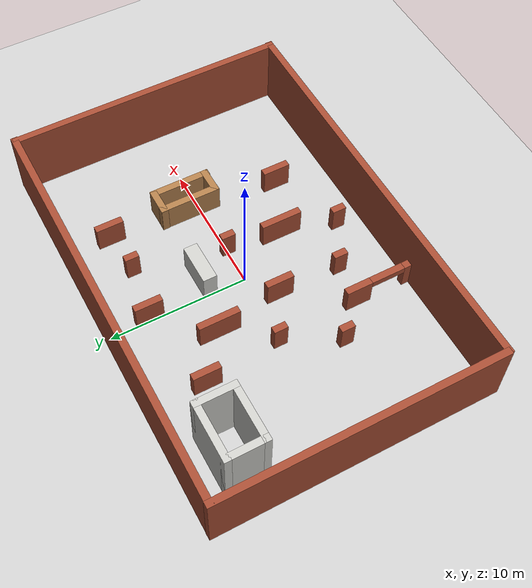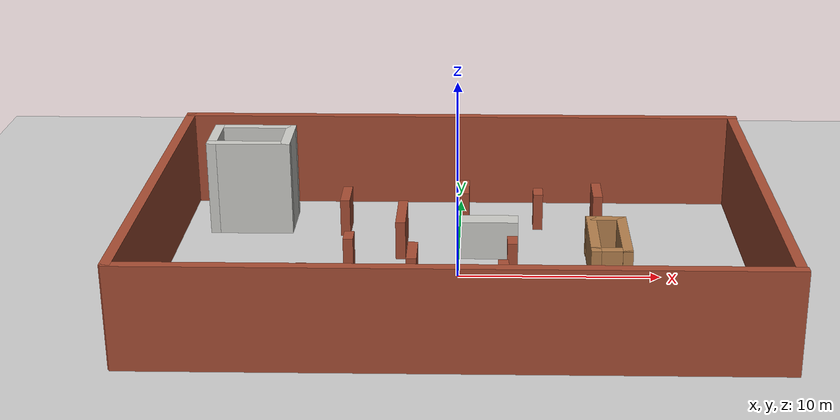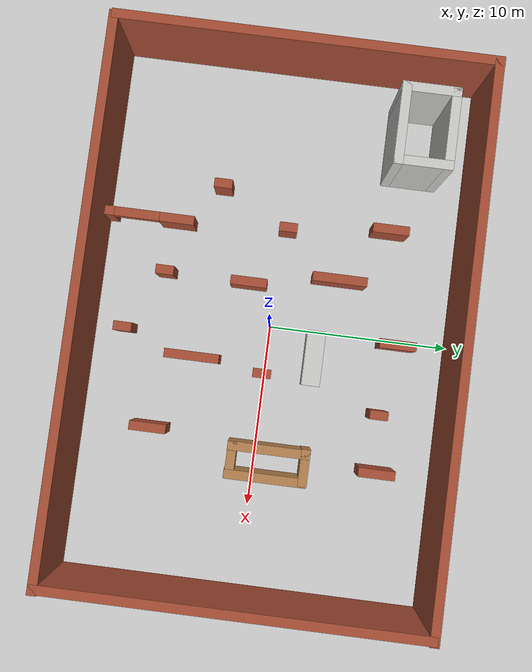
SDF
<sdf version="1.6">
 <world name="default">
  <model name="ground_plane">
   <static>1</static>
   <link name="link">
    <collision name="collision">
     <geometry><plane><normal>0 0 1</normal><size>40 40</size></plane></geometry>
     <surface><friction><ode><mu>100</mu><mu2>50</mu2></ode></friction></surface>
    </collision>
    <visual name="visual">
     <cast_shadows>0</cast_shadows>
     <geometry><plane><normal>0 0 1</normal><size>40 40</size></plane></geometry>
     <material>
      <script><uri>file://media/materials/scripts/gazebo.material</uri><name>Gazebo/Grey</name></script>
     </material>
    </visual>
   </link>
  </model>
  <model name="indoor6">
   <link name="Wall_0">
    <pose>-14.8293 0.123091 0 0 -0 1.5708</pose>
    <visual name="Wall_0_Visual">
     <pose>0 0 2.5 0 -0 0</pose>
     <geometry><box><size>20.5 0.5 5</size></box></geometry>
     <material>
      <script><uri>file://media/materials/scripts/gazebo.material</uri><name>Gazebo/Bricks</name></script>
      <ambient>1 1 1 1</ambient>
      <shader type="pixel"/>
     </material>
     <meta><layer>0</layer></meta>
    </visual>
    <collision name="Wall_0_Collision">
     <pose>0 0 2.5 0 -0 0</pose>
     <geometry><box><size>20.5 0.5 5</size></box></geometry>
     <surface>
      <friction>
       <ode><mu>1</mu><mu2>1</mu2><fdir1>0 0 0</fdir1><slip1>0</slip1><slip2>0</slip2></ode>
       <torsional>
        <coefficient>1</coefficient>
        <patch_radius>0</patch_radius>
        <surface_radius>0</surface_radius>
        <use_patch_radius>1</use_patch_radius>
        <ode><slip>0</slip></ode>
       </torsional>
      </friction>
      <bounce><restitution_coefficient>0</restitution_coefficient><threshold>1e+06</threshold></bounce>
      <contact>
       <collide_without_contact>0</collide_without_contact>
       <collide_without_contact_bitmask>1</collide_without_contact_bitmask>
       <collide_bitmask>1</collide_bitmask>
       <ode>
        <soft_cfm>0</soft_cfm>
        <soft_erp>0.2</soft_erp>
        <kp>1e+13</kp>
        <kd>1</kd>
        <max_vel>0.01</max_vel>
        <min_depth>0</min_depth>
       </ode>
       <bullet>
        <split_impulse>1</split_impulse>
        <split_impulse_penetration_threshold>-0.01</split_impulse_penetration_threshold>
        <soft_cfm>0</soft_cfm>
        <soft_erp>0.2</soft_erp>
        <kp>1e+13</kp>
        <kd>1</kd>
       </bullet>
      </contact>
     </surface>
    </collision>
   </link>
   <link name="Wall_1">
    <pose>-0.001616 10.1104 0 0 -0 0</pose>
    <inertial>
     <mass>1</mass>
     <inertia><ixx>1</ixx><ixy>0</ixy><ixz>0</ixz><iyy>1</iyy><iyz>0</iyz><izz>1</izz></inertia>
    </inertial>
    <visual name="Wall_1_Visual">
     <pose>0 0 2.5 0 -0 0</pose>
     <geometry><box><size>30 0.5 5</size></box></geometry>
     <material>
      <script><uri>file://media/materials/scripts/gazebo.material</uri><name>Gazebo/Bricks</name></script>
      <ambient>1 1 1 1</ambient>
      <shader type="pixel"><normal_map>__default__</normal_map></shader>
      <diffuse>1 1 1 1</diffuse>
      <specular>0.2 0.2 0.2 1</specular>
      <emissive>0 0 0 1</emissive>
     </material>
     <meta><layer>0</layer></meta>
    </visual>
    <collision name="Wall_1_Collision">
     <pose>0 0 2.5 0 -0 0</pose>
     <geometry><box><size>30 0.5 5</size></box></geometry>
     <surface>
      <friction>
       <ode><mu>1</mu><mu2>1</mu2><fdir1>0 0 0</fdir1><slip1>0</slip1><slip2>0</slip2></ode>
       <torsional>
        <coefficient>1</coefficient>
        <patch_radius>0</patch_radius>
        <surface_radius>0</surface_radius>
        <use_patch_radius>1</use_patch_radius>
        <ode><slip>0</slip></ode>
       </torsional>
      </friction>
      <bounce><restitution_coefficient>0</restitution_coefficient><threshold>1e+06</threshold></bounce>
      <contact>
       <collide_without_contact>0</collide_without_contact>
       <collide_without_contact_bitmask>1</collide_without_contact_bitmask>
       <collide_bitmask>1</collide_bitmask>
       <ode>
        <soft_cfm>0</soft_cfm>
        <soft_erp>0.2</soft_erp>
        <kp>1e+13</kp>
        <kd>1</kd>
        <max_vel>0.01</max_vel>
        <min_depth>0</min_depth>
       </ode>
       <bullet>
        <split_impulse>1</split_impulse>
        <split_impulse_penetration_threshold>-0.01</split_impulse_penetration_threshold>
        <soft_cfm>0</soft_cfm>
        <soft_erp>0.2</soft_erp>
        <kp>1e+13</kp>
        <kd>1</kd>
       </bullet>
      </contact>
     </surface>
    </collision>
   </link>
   <link name="Wall_12">
    <pose>-11.01 8.1 0 0 -0 0</pose>
    <visual name="Wall_12_Visual">
     <pose>0 0 2.5 0 -0 0</pose>
     <geometry><box><size>4.35044 0.5 5</size></box></geometry>
     <material>
      <script><uri>file://media/materials/scripts/gazebo.material</uri><name>Gazebo/CeilingTiled</name></script>
      <ambient>1 1 1 1</ambient>
      <shader type="pixel"/>
     </material>
     <meta><layer>0</layer></meta>
    </visual>
    <collision name="Wall_12_Collision">
     <pose>0 0 2.5 0 -0 0</pose>
     <geometry><box><size>4.35044 0.5 5</size></box></geometry>
     <surface>
      <friction>
       <ode><mu>1</mu><mu2>1</mu2><fdir1>0 0 0</fdir1><slip1>0</slip1><slip2>0</slip2></ode>
       <torsional>
        <coefficient>1</coefficient>
        <patch_radius>0</patch_radius>
        <surface_radius>0</surface_radius>
        <use_patch_radius>1</use_patch_radius>
        <ode><slip>0</slip></ode>
       </torsional>
      </friction>
      <bounce><restitution_coefficient>0</restitution_coefficient><threshold>1e+06</threshold></bounce>
      <contact>
       <collide_without_contact>0</collide_without_contact>
       <collide_without_contact_bitmask>1</collide_without_contact_bitmask>
       <collide_bitmask>1</collide_bitmask>
       <ode>
        <soft_cfm>0</soft_cfm>
        <soft_erp>0.2</soft_erp>
        <kp>1e+13</kp>
        <kd>1</kd>
        <max_vel>0.01</max_vel>
        <min_depth>0</min_depth>
       </ode>
       <bullet>
        <split_impulse>1</split_impulse>
        <split_impulse_penetration_threshold>-0.01</split_impulse_penetration_threshold>
        <soft_cfm>0</soft_cfm>
        <soft_erp>0.2</soft_erp>
        <kp>1e+13</kp>
        <kd>1</kd>
       </bullet>
      </contact>
     </surface>
    </collision>
   </link>
   <link name="Wall_13">
    <pose>-9.085 6.8 0 0 0 -1.5708</pose>
    <visual name="Wall_13_Visual">
     <pose>0 0 2.5 0 -0 0</pose>
     <geometry><box><size>3.1 0.5 5</size></box></geometry>
     <material>
      <script><uri>file://media/materials/scripts/gazebo.material</uri><name>Gazebo/CeilingTiled</name></script>
      <ambient>1 1 1 1</ambient>
      <shader type="pixel"/>
     </material>
     <meta><layer>0</layer></meta>
    </visual>
    <collision name="Wall_13_Collision">
     <pose>0 0 2.5 0 -0 0</pose>
     <geometry><box><size>3.1 0.5 5</size></box></geometry>
     <surface>
      <friction>
       <ode><mu>1</mu><mu2>1</mu2><fdir1>0 0 0</fdir1><slip1>0</slip1><slip2>0</slip2></ode>
       <torsional>
        <coefficient>1</coefficient>
        <patch_radius>0</patch_radius>
        <surface_radius>0</surface_radius>
        <use_patch_radius>1</use_patch_radius>
        <ode><slip>0</slip></ode>
       </torsional>
      </friction>
      <bounce><restitution_coefficient>0</restitution_coefficient><threshold>1e+06</threshold></bounce>
      <contact>
       <collide_without_contact>0</collide_without_contact>
       <collide_without_contact_bitmask>1</collide_without_contact_bitmask>
       <collide_bitmask>1</collide_bitmask>
       <ode>
        <soft_cfm>0</soft_cfm>
        <soft_erp>0.2</soft_erp>
        <kp>1e+13</kp>
        <kd>1</kd>
        <max_vel>0.01</max_vel>
        <min_depth>0</min_depth>
       </ode>
       <bullet>
        <split_impulse>1</split_impulse>
        <split_impulse_penetration_threshold>-0.01</split_impulse_penetration_threshold>
        <soft_cfm>0</soft_cfm>
        <soft_erp>0.2</soft_erp>
        <kp>1e+13</kp>
        <kd>1</kd>
       </bullet>
      </contact>
     </surface>
    </collision>
   </link>
   <link name="Wall_14">
    <pose>-11.01 5.5 0 0 -0 3.14159</pose>
    <visual name="Wall_14_Visual">
     <pose>0 0 2.5 0 -0 0</pose>
     <geometry><box><size>4.35 0.5 5</size></box></geometry>
     <material>
      <script><uri>file://media/materials/scripts/gazebo.material</uri><name>Gazebo/CeilingTiled</name></script>
      <ambient>1 1 1 1</ambient>
      <shader type="pixel"/>
     </material>
     <meta><layer>0</layer></meta>
    </visual>
    <collision name="Wall_14_Collision">
     <pose>0 0 2.5 0 -0 0</pose>
     <geometry><box><size>4.35 0.5 5</size></box></geometry>
     <surface>
      <friction>
       <ode><mu>1</mu><mu2>1</mu2><fdir1>0 0 0</fdir1><slip1>0</slip1><slip2>0</slip2></ode>
       <torsional>
        <coefficient>1</coefficient>
        <patch_radius>0</patch_radius>
        <surface_radius>0</surface_radius>
        <use_patch_radius>1</use_patch_radius>
        <ode><slip>0</slip></ode>
       </torsional>
      </friction>
      <bounce><restitution_coefficient>0</restitution_coefficient><threshold>1e+06</threshold></bounce>
      <contact>
       <collide_without_contact>0</collide_without_contact>
       <collide_without_contact_bitmask>1</collide_without_contact_bitmask>
       <collide_bitmask>1</collide_bitmask>
       <ode>
        <soft_cfm>0</soft_cfm>
        <soft_erp>0.2</soft_erp>
        <kp>1e+13</kp>
        <kd>1</kd>
        <max_vel>0.01</max_vel>
        <min_depth>0</min_depth>
       </ode>
       <bullet>
        <split_impulse>1</split_impulse>
        <split_impulse_penetration_threshold>-0.01</split_impulse_penetration_threshold>
        <soft_cfm>0</soft_cfm>
        <soft_erp>0.2</soft_erp>
        <kp>1e+13</kp>
        <kd>1</kd>
       </bullet>
      </contact>
     </surface>
    </collision>
   </link>
   <link name="Wall_15">
    <pose>-12.935 6.8 0 0 -0 1.5708</pose>
    <visual name="Wall_15_Visual">
     <pose>0 0 2.5 0 -0 0</pose>
     <geometry><box><size>3.1 0.5 5</size></box></geometry>
     <material>
      <script><uri>file://media/materials/scripts/gazebo.material</uri><name>Gazebo/CeilingTiled</name></script>
      <ambient>1 1 1 1</ambient>
      <shader type="pixel"/>
     </material>
     <meta><layer>0</layer></meta>
    </visual>
    <collision name="Wall_15_Collision">
     <pose>0 0 2.5 0 -0 0</pose>
     <geometry><box><size>3.1 0.5 5</size></box></geometry>
     <surface>
      <friction>
       <ode><mu>1</mu><mu2>1</mu2><fdir1>0 0 0</fdir1><slip1>0</slip1><slip2>0</slip2></ode>
       <torsional>
        <coefficient>1</coefficient>
        <patch_radius>0</patch_radius>
        <surface_radius>0</surface_radius>
        <use_patch_radius>1</use_patch_radius>
        <ode><slip>0</slip></ode>
       </torsional>
      </friction>
      <bounce><restitution_coefficient>0</restitution_coefficient><threshold>1e+06</threshold></bounce>
      <contact>
       <collide_without_contact>0</collide_without_contact>
       <collide_without_contact_bitmask>1</collide_without_contact_bitmask>
       <collide_bitmask>1</collide_bitmask>
       <ode>
        <soft_cfm>0</soft_cfm>
        <soft_erp>0.2</soft_erp>
        <kp>1e+13</kp>
        <kd>1</kd>
        <max_vel>0.01</max_vel>
        <min_depth>0</min_depth>
       </ode>
       <bullet>
        <split_impulse>1</split_impulse>
        <split_impulse_penetration_threshold>-0.01</split_impulse_penetration_threshold>
        <soft_cfm>0</soft_cfm>
        <soft_erp>0.2</soft_erp>
        <kp>1e+13</kp>
        <kd>1</kd>
       </bullet>
      </contact>
     </surface>
    </collision>
   </link>
   <link name="Wall_17">
    <pose>-5.12466 -7.3138 0 0 -0 1.5708</pose>
    <inertial>
     <mass>1</mass>
     <inertia><ixx>1</ixx><ixy>0</ixy><ixz>0</ixz><iyy>1</iyy><iyz>0</iyz><izz>1</izz></inertia>
    </inertial>
    <visual name="Wall_17_Visual_0">
     <pose>-2.4 0 1 0 -0 0</pose>
     <geometry><box><size>1 0.5 2</size></box></geometry>
     <material>
      <script><uri>file://media/materials/scripts/gazebo.material</uri><name>Gazebo/Bricks</name></script>
      <ambient>1 1 1 1</ambient>
      <shader type="pixel"><normal_map>__default__</normal_map></shader>
      <diffuse>1 1 1 1</diffuse>
      <specular>0.2 0.2 0.2 1</specular>
      <emissive>0 0 0 1</emissive>
     </material>
     <meta><layer>0</layer></meta>
    </visual>
    <visual name="Wall_17_Visual_1">
     <pose>1.54487 0 1 0 -0 0</pose>
     <geometry><box><size>1.91027 0.5 2</size></box></geometry>
     <material>
      <script><uri>file://media/materials/scripts/gazebo.material</uri><name>Gazebo/Bricks</name></script>
      <ambient>1 1 1 1</ambient>
      <shader type="pixel"><normal_map>__default__</normal_map></shader>
      <diffuse>1 1 1 1</diffuse>
      <specular>0.2 0.2 0.2 1</specular>
      <emissive>0 0 0 1</emissive>
     </material>
     <meta><layer>0</layer></meta>
    </visual>
    <visual name="Wall_17_Visual_5">
     <pose>-0.660267 0 1.75 0 -0 0</pose>
     <geometry><box><size>2.5 0.5 0.5</size></box></geometry>
     <material>
      <script><uri>file://media/materials/scripts/gazebo.material</uri><name>Gazebo/Bricks</name></script>
      <ambient>1 1 1 1</ambient>
      <shader type="pixel"><normal_map>__default__</normal_map></shader>
      <diffuse>1 1 1 1</diffuse>
      <specular>0.2 0.2 0.2 1</specular>
      <emissive>0 0 0 1</emissive>
     </material>
     <meta><layer>0</layer></meta>
    </visual>
    <collision name="Wall_17_Collision_1">
     <pose>1.54487 0 1 0 -0 0</pose>
     <geometry><box><size>1.91027 0.5 2</size></box></geometry>
     <surface>
      <friction>
       <ode><mu>1</mu><mu2>1</mu2><fdir1>0 0 0</fdir1><slip1>0</slip1><slip2>0</slip2></ode>
       <torsional>
        <coefficient>1</coefficient>
        <patch_radius>0</patch_radius>
        <surface_radius>0</surface_radius>
        <use_patch_radius>1</use_patch_radius>
        <ode><slip>0</slip></ode>
       </torsional>
      </friction>
      <bounce><restitution_coefficient>0</restitution_coefficient><threshold>1e+06</threshold></bounce>
      <contact>
       <collide_without_contact>0</collide_without_contact>
       <collide_without_contact_bitmask>1</collide_without_contact_bitmask>
       <collide_bitmask>1</collide_bitmask>
       <ode>
        <soft_cfm>0</soft_cfm>
        <soft_erp>0.2</soft_erp>
        <kp>1e+13</kp>
        <kd>1</kd>
        <max_vel>0.01</max_vel>
        <min_depth>0</min_depth>
       </ode>
       <bullet>
        <split_impulse>1</split_impulse>
        <split_impulse_penetration_threshold>-0.01</split_impulse_penetration_threshold>
        <soft_cfm>0</soft_cfm>
        <soft_erp>0.2</soft_erp>
        <kp>1e+13</kp>
        <kd>1</kd>
       </bullet>
      </contact>
     </surface>
    </collision>
    <collision name="Wall_17_Collision_5">
     <pose>-0.660267 0 1.75 0 -0 0</pose>
     <geometry><box><size>2.5 0.5 0.5</size></box></geometry>
     <surface>
      <friction>
       <ode><mu>1</mu><mu2>1</mu2><fdir1>0 0 0</fdir1><slip1>0</slip1><slip2>0</slip2></ode>
       <torsional>
        <coefficient>1</coefficient>
        <patch_radius>0</patch_radius>
        <surface_radius>0</surface_radius>
        <use_patch_radius>1</use_patch_radius>
        <ode><slip>0</slip></ode>
       </torsional>
      </friction>
      <bounce><restitution_coefficient>0</restitution_coefficient><threshold>1e+06</threshold></bounce>
      <contact>
       <collide_without_contact>0</collide_without_contact>
       <collide_without_contact_bitmask>1</collide_without_contact_bitmask>
       <collide_bitmask>1</collide_bitmask>
       <ode>
        <soft_cfm>0</soft_cfm>
        <soft_erp>0.2</soft_erp>
        <kp>1e+13</kp>
        <kd>1</kd>
        <max_vel>0.01</max_vel>
        <min_depth>0</min_depth>
       </ode>
       <bullet>
        <split_impulse>1</split_impulse>
        <split_impulse_penetration_threshold>-0.01</split_impulse_penetration_threshold>
        <soft_cfm>0</soft_cfm>
        <soft_erp>0.2</soft_erp>
        <kp>1e+13</kp>
        <kd>1</kd>
       </bullet>
      </contact>
     </surface>
    </collision>
    <collision name="Wall_17_Collision_0">
     <pose>-2.4 0 1 0 -0 0</pose>
     <geometry><box><size>1 0.5 2</size></box></geometry>
     <surface>
      <friction>
       <ode><mu>1</mu><mu2>1</mu2><fdir1>0 0 0</fdir1><slip1>0</slip1><slip2>0</slip2></ode>
       <torsional>
        <coefficient>1</coefficient>
        <patch_radius>0</patch_radius>
        <surface_radius>0</surface_radius>
        <use_patch_radius>1</use_patch_radius>
        <ode><slip>0</slip></ode>
       </torsional>
      </friction>
      <bounce><restitution_coefficient>0</restitution_coefficient><threshold>1e+06</threshold></bounce>
      <contact>
       <collide_without_contact>0</collide_without_contact>
       <collide_without_contact_bitmask>1</collide_without_contact_bitmask>
       <collide_bitmask>1</collide_bitmask>
       <ode>
        <soft_cfm>0</soft_cfm>
        <soft_erp>0.2</soft_erp>
        <kp>1e+13</kp>
        <kd>1</kd>
        <max_vel>0.01</max_vel>
        <min_depth>0</min_depth>
       </ode>
       <bullet>
        <split_impulse>1</split_impulse>
        <split_impulse_penetration_threshold>-0.01</split_impulse_penetration_threshold>
        <soft_cfm>0</soft_cfm>
        <soft_erp>0.2</soft_erp>
        <kp>1e+13</kp>
        <kd>1</kd>
       </bullet>
      </contact>
     </surface>
    </collision>
   </link>
   <link name="Wall_19">
    <pose>6.71461 0.814272 0 0 0 -1.5708</pose>
    <inertial>
     <mass>1</mass>
     <inertia><ixx>1</ixx><ixy>0</ixy><ixz>0</ixz><iyy>1</iyy><iyz>0</iyz><izz>1</izz></inertia>
    </inertial>
    <visual name="Wall_19_Visual">
     <pose>0 0 1 0 -0 0</pose>
     <geometry><box><size>4.5 0.5 2</size></box></geometry>
     <material>
      <script><uri>file://media/materials/scripts/gazebo.material</uri><name>Gazebo/Wood</name></script>
      <ambient>1 1 1 1</ambient>
      <shader type="pixel"><normal_map>__default__</normal_map></shader>
      <diffuse>1 1 1 1</diffuse>
      <specular>0.2 0.2 0.2 1</specular>
      <emissive>0 0 0 1</emissive>
     </material>
     <meta><layer>0</layer></meta>
    </visual>
    <collision name="Wall_19_Collision">
     <pose>0 0 1 0 -0 0</pose>
     <geometry><box><size>4.5 0.5 2</size></box></geometry>
     <surface>
      <friction>
       <ode><mu>1</mu><mu2>1</mu2><fdir1>0 0 0</fdir1><slip1>0</slip1><slip2>0</slip2></ode>
       <torsional>
        <coefficient>1</coefficient>
        <patch_radius>0</patch_radius>
        <surface_radius>0</surface_radius>
        <use_patch_radius>1</use_patch_radius>
        <ode><slip>0</slip></ode>
       </torsional>
      </friction>
      <bounce><restitution_coefficient>0</restitution_coefficient><threshold>1e+06</threshold></bounce>
      <contact>
       <collide_without_contact>0</collide_without_contact>
       <collide_without_contact_bitmask>1</collide_without_contact_bitmask>
       <collide_bitmask>1</collide_bitmask>
       <ode>
        <soft_cfm>0</soft_cfm>
        <soft_erp>0.2</soft_erp>
        <kp>1e+13</kp>
        <kd>1</kd>
        <max_vel>0.01</max_vel>
        <min_depth>0</min_depth>
       </ode>
       <bullet>
        <split_impulse>1</split_impulse>
        <split_impulse_penetration_threshold>-0.01</split_impulse_penetration_threshold>
        <soft_cfm>0</soft_cfm>
        <soft_erp>0.2</soft_erp>
        <kp>1e+13</kp>
        <kd>1</kd>
       </bullet>
      </contact>
     </surface>
    </collision>
   </link>
   <link name="Wall_2">
    <pose>14.7041 0.008258 0 0 0 -1.5708</pose>
    <visual name="Wall_2_Visual">
     <pose>0 0 2.5 0 -0 0</pose>
     <geometry><box><size>20.5 0.5 5</size></box></geometry>
     <material>
      <script><uri>file://media/materials/scripts/gazebo.material</uri><name>Gazebo/Bricks</name></script>
      <ambient>1 1 1 1</ambient>
      <shader type="pixel"/>
     </material>
     <meta><layer>0</layer></meta>
    </visual>
    <collision name="Wall_2_Collision">
     <pose>0 0 2.5 0 -0 0</pose>
     <geometry><box><size>20.5 0.5 5</size></box></geometry>
     <surface>
      <friction>
       <ode><mu>1</mu><mu2>1</mu2><fdir1>0 0 0</fdir1><slip1>0</slip1><slip2>0</slip2></ode>
       <torsional>
        <coefficient>1</coefficient>
        <patch_radius>0</patch_radius>
        <surface_radius>0</surface_radius>
        <use_patch_radius>1</use_patch_radius>
        <ode><slip>0</slip></ode>
       </torsional>
      </friction>
      <bounce><restitution_coefficient>0</restitution_coefficient><threshold>1e+06</threshold></bounce>
      <contact>
       <collide_without_contact>0</collide_without_contact>
       <collide_without_contact_bitmask>1</collide_without_contact_bitmask>
       <collide_bitmask>1</collide_bitmask>
       <ode>
        <soft_cfm>0</soft_cfm>
        <soft_erp>0.2</soft_erp>
        <kp>1e+13</kp>
        <kd>1</kd>
        <max_vel>0.01</max_vel>
        <min_depth>0</min_depth>
       </ode>
       <bullet>
        <split_impulse>1</split_impulse>
        <split_impulse_penetration_threshold>-0.01</split_impulse_penetration_threshold>
        <soft_cfm>0</soft_cfm>
        <soft_erp>0.2</soft_erp>
        <kp>1e+13</kp>
        <kd>1</kd>
       </bullet>
      </contact>
     </surface>
    </collision>
   </link>
   <link name="Wall_20">
    <pose>7.49531 -1.17619 0 0 -0 0</pose>
    <inertial>
     <mass>1</mass>
     <inertia><ixx>1</ixx><ixy>0</ixy><ixz>0</ixz><iyy>1</iyy><iyz>0</iyz><izz>1</izz></inertia>
    </inertial>
    <visual name="Wall_20_Visual">
     <pose>0 0 1 0 -0 0</pose>
     <geometry><box><size>2 0.5 2</size></box></geometry>
     <material>
      <script><uri>file://media/materials/scripts/gazebo.material</uri><name>Gazebo/Wood</name></script>
      <ambient>1 1 1 1</ambient>
      <shader type="pixel"><normal_map>__default__</normal_map></shader>
      <diffuse>1 1 1 1</diffuse>
      <specular>0.2 0.2 0.2 1</specular>
      <emissive>0 0 0 1</emissive>
     </material>
     <meta><layer>0</layer></meta>
    </visual>
    <collision name="Wall_20_Collision">
     <pose>0 0 1 0 -0 0</pose>
     <geometry><box><size>2 0.5 2</size></box></geometry>
     <surface>
      <friction>
       <ode><mu>1</mu><mu2>1</mu2><fdir1>0 0 0</fdir1><slip1>0</slip1><slip2>0</slip2></ode>
       <torsional>
        <coefficient>1</coefficient>
        <patch_radius>0</patch_radius>
        <surface_radius>0</surface_radius>
        <use_patch_radius>1</use_patch_radius>
        <ode><slip>0</slip></ode>
       </torsional>
      </friction>
      <bounce><restitution_coefficient>0</restitution_coefficient><threshold>1e+06</threshold></bounce>
      <contact>
       <collide_without_contact>0</collide_without_contact>
       <collide_without_contact_bitmask>1</collide_without_contact_bitmask>
       <collide_bitmask>1</collide_bitmask>
       <ode>
        <soft_cfm>0</soft_cfm>
        <soft_erp>0.2</soft_erp>
        <kp>1e+13</kp>
        <kd>1</kd>
        <max_vel>0.01</max_vel>
        <min_depth>0</min_depth>
       </ode>
       <bullet>
        <split_impulse>1</split_impulse>
        <split_impulse_penetration_threshold>-0.01</split_impulse_penetration_threshold>
        <soft_cfm>0</soft_cfm>
        <soft_erp>0.2</soft_erp>
        <kp>1e+13</kp>
        <kd>1</kd>
       </bullet>
      </contact>
     </surface>
    </collision>
   </link>
   <link name="Wall_21">
    <pose>8.24649 0.78306 0 0 -0 1.5708</pose>
    <inertial>
     <mass>1</mass>
     <inertia><ixx>1</ixx><ixy>0</ixy><ixz>0</ixz><iyy>1</iyy><iyz>0</iyz><izz>1</izz></inertia>
    </inertial>
    <visual name="Wall_21_Visual">
     <pose>0 0 1 0 -0 0</pose>
     <geometry><box><size>4.5 0.5 2</size></box></geometry>
     <material>
      <script><uri>file://media/materials/scripts/gazebo.material</uri><name>Gazebo/Wood</name></script>
      <ambient>1 1 1 1</ambient>
      <shader type="pixel"><normal_map>__default__</normal_map></shader>
      <diffuse>1 1 1 1</diffuse>
      <specular>0.2 0.2 0.2 1</specular>
      <emissive>0 0 0 1</emissive>
     </material>
     <meta><layer>0</layer></meta>
    </visual>
    <collision name="Wall_21_Collision">
     <pose>0 0 1 0 -0 0</pose>
     <geometry><box><size>4.5 0.5 2</size></box></geometry>
     <surface>
      <friction>
       <ode><mu>1</mu><mu2>1</mu2><fdir1>0 0 0</fdir1><slip1>0</slip1><slip2>0</slip2></ode>
       <torsional>
        <coefficient>1</coefficient>
        <patch_radius>0</patch_radius>
        <surface_radius>0</surface_radius>
        <use_patch_radius>1</use_patch_radius>
        <ode><slip>0</slip></ode>
       </torsional>
      </friction>
      <bounce><restitution_coefficient>0</restitution_coefficient><threshold>1e+06</threshold></bounce>
      <contact>
       <collide_without_contact>0</collide_without_contact>
       <collide_without_contact_bitmask>1</collide_without_contact_bitmask>
       <collide_bitmask>1</collide_bitmask>
       <ode>
        <soft_cfm>0</soft_cfm>
        <soft_erp>0.2</soft_erp>
        <kp>1e+13</kp>
        <kd>1</kd>
        <max_vel>0.01</max_vel>
        <min_depth>0</min_depth>
       </ode>
       <bullet>
        <split_impulse>1</split_impulse>
        <split_impulse_penetration_threshold>-0.01</split_impulse_penetration_threshold>
        <soft_cfm>0</soft_cfm>
        <soft_erp>0.2</soft_erp>
        <kp>1e+13</kp>
        <kd>1</kd>
       </bullet>
      </contact>
     </surface>
    </collision>
   </link>
   <link name="Wall_24">
    <pose>7.43228 2.80863 0 0 -0 0</pose>
    <inertial>
     <mass>1</mass>
     <inertia><ixx>1</ixx><ixy>0</ixy><ixz>0</ixz><iyy>1</iyy><iyz>0</iyz><izz>1</izz></inertia>
    </inertial>
    <visual name="Wall_24_Visual">
     <pose>0 0 1 0 -0 0</pose>
     <geometry><box><size>2 0.5 2</size></box></geometry>
     <material>
      <script><uri>file://media/materials/scripts/gazebo.material</uri><name>Gazebo/Wood</name></script>
      <ambient>1 1 1 1</ambient>
      <shader type="pixel"><normal_map>__default__</normal_map></shader>
      <diffuse>1 1 1 1</diffuse>
      <specular>0.2 0.2 0.2 1</specular>
      <emissive>0 0 0 1</emissive>
     </material>
     <meta><layer>0</layer></meta>
    </visual>
    <collision name="Wall_24_Collision">
     <pose>0 0 1 0 -0 0</pose>
     <geometry><box><size>2 0.5 2</size></box></geometry>
     <surface>
      <friction>
       <ode><mu>1</mu><mu2>1</mu2><fdir1>0 0 0</fdir1><slip1>0</slip1><slip2>0</slip2></ode>
       <torsional>
        <coefficient>1</coefficient>
        <patch_radius>0</patch_radius>
        <surface_radius>0</surface_radius>
        <use_patch_radius>1</use_patch_radius>
        <ode><slip>0</slip></ode>
       </torsional>
      </friction>
      <bounce><restitution_coefficient>0</restitution_coefficient><threshold>1e+06</threshold></bounce>
      <contact>
       <collide_without_contact>0</collide_without_contact>
       <collide_without_contact_bitmask>1</collide_without_contact_bitmask>
       <collide_bitmask>1</collide_bitmask>
       <ode>
        <soft_cfm>0</soft_cfm>
        <soft_erp>0.2</soft_erp>
        <kp>1e+13</kp>
        <kd>1</kd>
        <max_vel>0.01</max_vel>
        <min_depth>0</min_depth>
       </ode>
       <bullet>
        <split_impulse>1</split_impulse>
        <split_impulse_penetration_threshold>-0.01</split_impulse_penetration_threshold>
        <soft_cfm>0</soft_cfm>
        <soft_erp>0.2</soft_erp>
        <kp>1e+13</kp>
        <kd>1</kd>
       </bullet>
      </contact>
     </surface>
    </collision>
   </link>
   <link name="Wall_26">
    <pose>1.50196 2.59156 0 0 0 -1.5708</pose>
    <inertial>
     <mass>1</mass>
     <inertia><ixx>1</ixx><ixy>0</ixy><ixz>0</ixz><iyy>1</iyy><iyz>0</iyz><izz>1</izz></inertia>
    </inertial>
    <visual name="Wall_26_Visual">
     <pose>0 0 1 0 -0 0</pose>
     <geometry><box><size>1 3 2</size></box></geometry>
     <material>
      <script><uri>file://media/materials/scripts/gazebo.material</uri><name>Gazebo/CeilingTiled</name></script>
      <ambient>1 1 1 1</ambient>
      <shader type="pixel"><normal_map>__default__</normal_map></shader>
      <diffuse>1 1 1 1</diffuse>
      <specular>0 0 0 1</specular>
      <emissive>0 0 0 1</emissive>
     </material>
     <meta><layer>0</layer></meta>
    </visual>
    <collision name="Wall_26_Collision">
     <pose>0 0 1 0 -0 0</pose>
     <geometry><box><size>1 3 2</size></box></geometry>
     <surface>
      <friction>
       <ode><mu>1</mu><mu2>1</mu2><fdir1>0 0 0</fdir1><slip1>0</slip1><slip2>0</slip2></ode>
       <torsional>
        <coefficient>1</coefficient>
        <patch_radius>0</patch_radius>
        <surface_radius>0</surface_radius>
        <use_patch_radius>1</use_patch_radius>
        <ode><slip>0</slip></ode>
       </torsional>
      </friction>
      <bounce><restitution_coefficient>0</restitution_coefficient><threshold>1e+06</threshold></bounce>
      <contact>
       <collide_without_contact>0</collide_without_contact>
       <collide_without_contact_bitmask>1</collide_without_contact_bitmask>
       <collide_bitmask>1</collide_bitmask>
       <ode>
        <soft_cfm>0</soft_cfm>
        <soft_erp>0.2</soft_erp>
        <kp>1e+13</kp>
        <kd>1</kd>
        <max_vel>0.01</max_vel>
        <min_depth>0</min_depth>
       </ode>
       <bullet>
        <split_impulse>1</split_impulse>
        <split_impulse_penetration_threshold>-0.01</split_impulse_penetration_threshold>
        <soft_cfm>0</soft_cfm>
        <soft_erp>0.2</soft_erp>
        <kp>1e+13</kp>
        <kd>1</kd>
       </bullet>
      </contact>
     </surface>
    </collision>
   </link>
   <link name="Wall_3">
    <pose>0 -10 0 0 -0 3.14159</pose>
    <inertial>
     <mass>1</mass>
     <inertia><ixx>1</ixx><ixy>0</ixy><ixz>0</ixz><iyy>1</iyy><iyz>0</iyz><izz>1</izz></inertia>
    </inertial>
    <visual name="Wall_3_Visual">
     <pose>0 0 2.5 0 -0 0</pose>
     <geometry><box><size>30 0.5 5</size></box></geometry>
     <material>
      <script><uri>file://media/materials/scripts/gazebo.material</uri><name>Gazebo/Bricks</name></script>
      <ambient>1 1 1 1</ambient>
      <shader type="pixel"><normal_map>__default__</normal_map></shader>
      <diffuse>1 1 1 1</diffuse>
      <specular>0.2 0.2 0.2 1</specular>
      <emissive>0 0 0 1</emissive>
     </material>
     <meta><layer>0</layer></meta>
    </visual>
    <collision name="Wall_3_Collision">
     <pose>0 0 2.5 0 -0 0</pose>
     <geometry><box><size>30 0.5 5</size></box></geometry>
     <surface>
      <friction>
       <ode><mu>1</mu><mu2>1</mu2><fdir1>0 0 0</fdir1><slip1>0</slip1><slip2>0</slip2></ode>
       <torsional>
        <coefficient>1</coefficient>
        <patch_radius>0</patch_radius>
        <surface_radius>0</surface_radius>
        <use_patch_radius>1</use_patch_radius>
        <ode><slip>0</slip></ode>
       </torsional>
      </friction>
      <bounce><restitution_coefficient>0</restitution_coefficient><threshold>1e+06</threshold></bounce>
      <contact>
       <collide_without_contact>0</collide_without_contact>
       <collide_without_contact_bitmask>1</collide_without_contact_bitmask>
       <collide_bitmask>1</collide_bitmask>
       <ode>
        <soft_cfm>0</soft_cfm>
        <soft_erp>0.2</soft_erp>
        <kp>1e+13</kp>
        <kd>1</kd>
        <max_vel>0.01</max_vel>
        <min_depth>0</min_depth>
       </ode>
       <bullet>
        <split_impulse>1</split_impulse>
        <split_impulse_penetration_threshold>-0.01</split_impulse_penetration_threshold>
        <soft_cfm>0</soft_cfm>
        <soft_erp>0.2</soft_erp>
        <kp>1e+13</kp>
        <kd>1</kd>
       </bullet>
      </contact>
     </surface>
    </collision>
   </link>
   <link name="Wall_7_clone_0">
    <pose>-2.1998 -1.42248 0 0 -0 1.5708</pose>
    <inertial>
     <mass>1</mass>
     <inertia><ixx>1</ixx><ixy>0</ixy><ixz>0</ixz><iyy>1</iyy><iyz>0</iyz><izz>1</izz></inertia>
    </inertial>
    <visual name="Wall_7_Visual">
     <pose>0 0 1 0 -0 0</pose>
     <geometry><box><size>2 0.5 2</size></box></geometry>
     <material>
      <script><uri>file://media/materials/scripts/gazebo.material</uri><name>Gazebo/Bricks</name></script>
      <ambient>1 1 1 1</ambient>
      <shader type="pixel"><normal_map>__default__</normal_map></shader>
      <diffuse>1 1 1 1</diffuse>
      <specular>0.2 0.2 0.2 1</specular>
      <emissive>0 0 0 1</emissive>
     </material>
     <meta><layer>0</layer></meta>
    </visual>
    <collision name="Wall_7_Collision">
     <pose>0 0 1 0 -0 0</pose>
     <geometry><box><size>2 0.5 2</size></box></geometry>
     <surface>
      <friction>
       <ode><mu>1</mu><mu2>1</mu2><fdir1>0 0 0</fdir1><slip1>0</slip1><slip2>0</slip2></ode>
       <torsional>
        <coefficient>1</coefficient>
        <patch_radius>0</patch_radius>
        <surface_radius>0</surface_radius>
        <use_patch_radius>1</use_patch_radius>
        <ode><slip>0</slip></ode>
       </torsional>
      </friction>
      <bounce><restitution_coefficient>0</restitution_coefficient><threshold>1e+06</threshold></bounce>
      <contact>
       <collide_without_contact>0</collide_without_contact>
       <collide_without_contact_bitmask>1</collide_without_contact_bitmask>
       <collide_bitmask>1</collide_bitmask>
       <ode>
        <soft_cfm>0</soft_cfm>
        <soft_erp>0.2</soft_erp>
        <kp>1e+13</kp>
        <kd>1</kd>
        <max_vel>0.01</max_vel>
        <min_depth>0</min_depth>
       </ode>
       <bullet>
        <split_impulse>1</split_impulse>
        <split_impulse_penetration_threshold>-0.01</split_impulse_penetration_threshold>
        <soft_cfm>0</soft_cfm>
        <soft_erp>0.2</soft_erp>
        <kp>1e+13</kp>
        <kd>1</kd>
       </bullet>
      </contact>
     </surface>
    </collision>
   </link>
   <link name="Wall_7_clone_0_clone">
    <pose>0.220462 7.05875 0 0 -0 1.5708</pose>
    <inertial>
     <mass>1</mass>
     <inertia><ixx>1</ixx><ixy>0</ixy><ixz>0</ixz><iyy>1</iyy><iyz>0</iyz><izz>1</izz></inertia>
    </inertial>
    <visual name="Wall_7_Visual">
     <pose>0 0 1 0 -0 0</pose>
     <geometry><box><size>2 0.5 2</size></box></geometry>
     <material>
      <script><uri>file://media/materials/scripts/gazebo.material</uri><name>Gazebo/Bricks</name></script>
      <ambient>1 1 1 1</ambient>
      <shader type="pixel"><normal_map>__default__</normal_map></shader>
      <diffuse>1 1 1 1</diffuse>
      <specular>0.2 0.2 0.2 1</specular>
      <emissive>0 0 0 1</emissive>
     </material>
     <meta><layer>0</layer></meta>
    </visual>
    <collision name="Wall_7_Collision">
     <pose>0 0 1 0 -0 0</pose>
     <geometry><box><size>2 0.5 2</size></box></geometry>
     <surface>
      <friction>
       <ode><mu>1</mu><mu2>1</mu2><fdir1>0 0 0</fdir1><slip1>0</slip1><slip2>0</slip2></ode>
       <torsional>
        <coefficient>1</coefficient>
        <patch_radius>0</patch_radius>
        <surface_radius>0</surface_radius>
        <use_patch_radius>1</use_patch_radius>
        <ode><slip>0</slip></ode>
       </torsional>
      </friction>
      <bounce><restitution_coefficient>0</restitution_coefficient><threshold>1e+06</threshold></bounce>
      <contact>
       <collide_without_contact>0</collide_without_contact>
       <collide_without_contact_bitmask>1</collide_without_contact_bitmask>
       <collide_bitmask>1</collide_bitmask>
       <ode>
        <soft_cfm>0</soft_cfm>
        <soft_erp>0.2</soft_erp>
        <kp>1e+13</kp>
        <kd>1</kd>
        <max_vel>0.01</max_vel>
        <min_depth>0</min_depth>
       </ode>
       <bullet>
        <split_impulse>1</split_impulse>
        <split_impulse_penetration_threshold>-0.01</split_impulse_penetration_threshold>
        <soft_cfm>0</soft_cfm>
        <soft_erp>0.2</soft_erp>
        <kp>1e+13</kp>
        <kd>1</kd>
       </bullet>
      </contact>
     </surface>
    </collision>
   </link>
   <link name="Wall_7_clone_0_clone_0_clone">
    <pose>6.31194 -5.84361 0.011132 0 -0 1.5708</pose>
    <inertial>
     <mass>1</mass>
     <inertia><ixx>1</ixx><ixy>0</ixy><ixz>0</ixz><iyy>1</iyy><iyz>0</iyz><izz>1</izz></inertia>
    </inertial>
    <visual name="Wall_7_Visual">
     <pose>0 0 1 0 -0 0</pose>
     <geometry><box><size>2 0.5 2</size></box></geometry>
     <material>
      <script><uri>file://media/materials/scripts/gazebo.material</uri><name>Gazebo/Bricks</name></script>
      <ambient>1 1 1 1</ambient>
      <shader type="pixel"><normal_map>__default__</normal_map></shader>
      <diffuse>1 1 1 1</diffuse>
      <specular>0.2 0.2 0.2 1</specular>
      <emissive>0 0 0 1</emissive>
     </material>
     <meta><layer>0</layer></meta>
    </visual>
    <collision name="Wall_7_Collision">
     <pose>0 0 1 0 -0 0</pose>
     <geometry><box><size>2 0.5 2</size></box></geometry>
     <surface>
      <friction>
       <ode><mu>1</mu><mu2>1</mu2><fdir1>0 0 0</fdir1><slip1>0</slip1><slip2>0</slip2></ode>
       <torsional>
        <coefficient>1</coefficient>
        <patch_radius>0</patch_radius>
        <surface_radius>0</surface_radius>
        <use_patch_radius>1</use_patch_radius>
        <ode><slip>0</slip></ode>
       </torsional>
      </friction>
      <bounce><restitution_coefficient>0</restitution_coefficient><threshold>1e+06</threshold></bounce>
      <contact>
       <collide_without_contact>0</collide_without_contact>
       <collide_without_contact_bitmask>1</collide_without_contact_bitmask>
       <collide_bitmask>1</collide_bitmask>
       <ode>
        <soft_cfm>0</soft_cfm>
        <soft_erp>0.2</soft_erp>
        <kp>1e+13</kp>
        <kd>1</kd>
        <max_vel>0.01</max_vel>
        <min_depth>0</min_depth>
       </ode>
       <bullet>
        <split_impulse>1</split_impulse>
        <split_impulse_penetration_threshold>-0.01</split_impulse_penetration_threshold>
        <soft_cfm>0</soft_cfm>
        <soft_erp>0.2</soft_erp>
        <kp>1e+13</kp>
        <kd>1</kd>
       </bullet>
      </contact>
     </surface>
    </collision>
   </link>
   <link name="Wall_7_clone_0_clone_0_clone_clone">
    <pose>7.25236 6.71504 0.011132 0 -0 1.5708</pose>
    <inertial>
     <mass>1</mass>
     <inertia><ixx>1</ixx><ixy>0</ixy><ixz>0</ixz><iyy>1</iyy><iyz>0</iyz><izz>1</izz></inertia>
    </inertial>
    <visual name="Wall_7_Visual">
     <pose>0 0 1 0 -0 0</pose>
     <geometry><box><size>2 0.5 2</size></box></geometry>
     <material>
      <script><uri>file://media/materials/scripts/gazebo.material</uri><name>Gazebo/Bricks</name></script>
      <ambient>1 1 1 1</ambient>
      <shader type="pixel"><normal_map>__default__</normal_map></shader>
      <diffuse>1 1 1 1</diffuse>
      <specular>0.2 0.2 0.2 1</specular>
      <emissive>0 0 0 1</emissive>
     </material>
     <meta><layer>0</layer></meta>
    </visual>
    <collision name="Wall_7_Collision">
     <pose>0 0 1 0 -0 0</pose>
     <geometry><box><size>2 0.5 2</size></box></geometry>
     <surface>
      <friction>
       <ode><mu>1</mu><mu2>1</mu2><fdir1>0 0 0</fdir1><slip1>0</slip1><slip2>0</slip2></ode>
       <torsional>
        <coefficient>1</coefficient>
        <patch_radius>0</patch_radius>
        <surface_radius>0</surface_radius>
        <use_patch_radius>1</use_patch_radius>
        <ode><slip>0</slip></ode>
       </torsional>
      </friction>
      <bounce><restitution_coefficient>0</restitution_coefficient><threshold>1e+06</threshold></bounce>
      <contact>
       <collide_without_contact>0</collide_without_contact>
       <collide_without_contact_bitmask>1</collide_without_contact_bitmask>
       <collide_bitmask>1</collide_bitmask>
       <ode>
        <soft_cfm>0</soft_cfm>
        <soft_erp>0.2</soft_erp>
        <kp>1e+13</kp>
        <kd>1</kd>
        <max_vel>0.01</max_vel>
        <min_depth>0</min_depth>
       </ode>
       <bullet>
        <split_impulse>1</split_impulse>
        <split_impulse_penetration_threshold>-0.01</split_impulse_penetration_threshold>
        <soft_cfm>0</soft_cfm>
        <soft_erp>0.2</soft_erp>
        <kp>1e+13</kp>
        <kd>1</kd>
       </bullet>
      </contact>
     </surface>
    </collision>
   </link>
   <link name="Wall_7_clone_0_clone_0_clone_clone_0">
    <pose>-6.01704 5.95102 0.011132 0 -0 1.5708</pose>
    <inertial>
     <mass>1</mass>
     <inertia><ixx>1</ixx><ixy>0</ixy><ixz>0</ixz><iyy>1</iyy><iyz>0</iyz><izz>1</izz></inertia>
    </inertial>
    <visual name="Wall_7_Visual">
     <pose>0 0 1 0 -0 0</pose>
     <geometry><box><size>2 0.5 2</size></box></geometry>
     <material>
      <script><uri>file://media/materials/scripts/gazebo.material</uri><name>Gazebo/Bricks</name></script>
      <ambient>1 1 1 1</ambient>
      <shader type="pixel"><normal_map>__default__</normal_map></shader>
      <diffuse>1 1 1 1</diffuse>
      <specular>0.2 0.2 0.2 1</specular>
      <emissive>0 0 0 1</emissive>
     </material>
     <meta><layer>0</layer></meta>
    </visual>
    <collision name="Wall_7_Collision">
     <pose>0 0 1 0 -0 0</pose>
     <geometry><box><size>2 0.5 2</size></box></geometry>
     <surface>
      <friction>
       <ode><mu>1</mu><mu2>1</mu2><fdir1>0 0 0</fdir1><slip1>0</slip1><slip2>0</slip2></ode>
       <torsional>
        <coefficient>1</coefficient>
        <patch_radius>0</patch_radius>
        <surface_radius>0</surface_radius>
        <use_patch_radius>1</use_patch_radius>
        <ode><slip>0</slip></ode>
       </torsional>
      </friction>
      <bounce><restitution_coefficient>0</restitution_coefficient><threshold>1e+06</threshold></bounce>
      <contact>
       <collide_without_contact>0</collide_without_contact>
       <collide_without_contact_bitmask>1</collide_without_contact_bitmask>
       <collide_bitmask>1</collide_bitmask>
       <ode>
        <soft_cfm>0</soft_cfm>
        <soft_erp>0.2</soft_erp>
        <kp>1e+13</kp>
        <kd>1</kd>
        <max_vel>0.01</max_vel>
        <min_depth>0</min_depth>
       </ode>
       <bullet>
        <split_impulse>1</split_impulse>
        <split_impulse_penetration_threshold>-0.01</split_impulse_penetration_threshold>
        <soft_cfm>0</soft_cfm>
        <soft_erp>0.2</soft_erp>
        <kp>1e+13</kp>
        <kd>1</kd>
       </bullet>
      </contact>
     </surface>
    </collision>
   </link>
   <link name="Wall_9_clone">
    <pose>-2.95726 3.49654 0 0 -0 1.5708</pose>
    <inertial>
     <mass>1</mass>
     <inertia><ixx>1</ixx><ixy>0</ixy><ixz>0</ixz><iyy>1</iyy><iyz>0</iyz><izz>1</izz></inertia>
    </inertial>
    <visual name="Wall_9_Visual">
     <pose>0 0 1 0 -0 0</pose>
     <geometry><box><size>3 0.5 2</size></box></geometry>
     <material>
      <script><uri>file://media/materials/scripts/gazebo.material</uri><name>Gazebo/Bricks</name></script>
      <ambient>1 1 1 1</ambient>
      <shader type="pixel"><normal_map>__default__</normal_map></shader>
      <diffuse>1 1 1 1</diffuse>
      <specular>0.2 0.2 0.2 1</specular>
      <emissive>0 0 0 1</emissive>
     </material>
     <meta><layer>0</layer></meta>
    </visual>
    <collision name="Wall_9_Collision">
     <pose>0 0 1 0 -0 0</pose>
     <geometry><box><size>3 0.5 2</size></box></geometry>
     <surface>
      <friction>
       <ode><mu>1</mu><mu2>1</mu2><fdir1>0 0 0</fdir1><slip1>0</slip1><slip2>0</slip2></ode>
       <torsional>
        <coefficient>1</coefficient>
        <patch_radius>0</patch_radius>
        <surface_radius>0</surface_radius>
        <use_patch_radius>1</use_patch_radius>
        <ode><slip>0</slip></ode>
       </torsional>
      </friction>
      <bounce><restitution_coefficient>0</restitution_coefficient><threshold>1e+06</threshold></bounce>
      <contact>
       <collide_without_contact>0</collide_without_contact>
       <collide_without_contact_bitmask>1</collide_without_contact_bitmask>
       <collide_bitmask>1</collide_bitmask>
       <ode>
        <soft_cfm>0</soft_cfm>
        <soft_erp>0.2</soft_erp>
        <kp>1e+13</kp>
        <kd>1</kd>
        <max_vel>0.01</max_vel>
        <min_depth>0</min_depth>
       </ode>
       <bullet>
        <split_impulse>1</split_impulse>
        <split_impulse_penetration_threshold>-0.01</split_impulse_penetration_threshold>
        <soft_cfm>0</soft_cfm>
        <soft_erp>0.2</soft_erp>
        <kp>1e+13</kp>
        <kd>1</kd>
       </bullet>
      </contact>
     </surface>
    </collision>
   </link>
   <link name="Wall_9_clone_1">
    <pose>-2.26801 -6.05426 0 0 -0 1.5708</pose>
    <inertial>
     <mass>1</mass>
     <inertia><ixx>1</ixx><ixy>0</ixy><ixz>0</ixz><iyy>1</iyy><iyz>0</iyz><izz>1</izz></inertia>
    </inertial>
    <visual name="Wall_9_Visual">
     <pose>0 0 1 0 -0 0</pose>
     <geometry><box><size>1 0.5 2</size></box></geometry>
     <material>
      <script><uri>file://media/materials/scripts/gazebo.material</uri><name>Gazebo/Bricks</name></script>
      <ambient>1 1 1 1</ambient>
      <shader type="pixel"><normal_map>__default__</normal_map></shader>
      <diffuse>1 1 1 1</diffuse>
      <specular>0.2 0.2 0.2 1</specular>
      <emissive>0 0 0 1</emissive>
     </material>
     <meta><layer>0</layer></meta>
    </visual>
    <collision name="Wall_9_Collision">
     <pose>0 0 1 0 -0 0</pose>
     <geometry><box><size>1 0.5 2</size></box></geometry>
     <surface>
      <friction>
       <ode><mu>1</mu><mu2>1</mu2><fdir1>0 0 0</fdir1><slip1>0</slip1><slip2>0</slip2></ode>
       <torsional>
        <coefficient>1</coefficient>
        <patch_radius>0</patch_radius>
        <surface_radius>0</surface_radius>
        <use_patch_radius>1</use_patch_radius>
        <ode><slip>0</slip></ode>
       </torsional>
      </friction>
      <bounce><restitution_coefficient>0</restitution_coefficient><threshold>1e+06</threshold></bounce>
      <contact>
       <collide_without_contact>0</collide_without_contact>
       <collide_without_contact_bitmask>1</collide_without_contact_bitmask>
       <collide_bitmask>1</collide_bitmask>
       <ode>
        <soft_cfm>0</soft_cfm>
        <soft_erp>0.2</soft_erp>
        <kp>1e+13</kp>
        <kd>1</kd>
        <max_vel>0.01</max_vel>
        <min_depth>0</min_depth>
       </ode>
       <bullet>
        <split_impulse>1</split_impulse>
        <split_impulse_penetration_threshold>-0.01</split_impulse_penetration_threshold>
        <soft_cfm>0</soft_cfm>
        <soft_erp>0.2</soft_erp>
        <kp>1e+13</kp>
        <kd>1</kd>
       </bullet>
      </contact>
     </surface>
    </collision>
   </link>
   <link name="Wall_9_clone_1_clone">
    <pose>-7.39335 -3.4927 0 0 -0 1.5708</pose>
    <inertial>
     <mass>1</mass>
     <inertia><ixx>1</ixx><ixy>0</ixy><ixz>0</ixz><iyy>1</iyy><iyz>0</iyz><izz>1</izz></inertia>
    </inertial>
    <visual name="Wall_9_Visual">
     <pose>0 0 1 0 -0 0</pose>
     <geometry><box><size>1 0.5 2</size></box></geometry>
     <material>
      <script><uri>file://media/materials/scripts/gazebo.material</uri><name>Gazebo/Bricks</name></script>
      <ambient>1 1 1 1</ambient>
      <shader type="pixel"><normal_map>__default__</normal_map></shader>
      <diffuse>1 1 1 1</diffuse>
      <specular>0.2 0.2 0.2 1</specular>
      <emissive>0 0 0 1</emissive>
     </material>
     <meta><layer>0</layer></meta>
    </visual>
    <collision name="Wall_9_Collision">
     <pose>0 0 1 0 -0 0</pose>
     <geometry><box><size>1 0.5 2</size></box></geometry>
     <surface>
      <friction>
       <ode><mu>1</mu><mu2>1</mu2><fdir1>0 0 0</fdir1><slip1>0</slip1><slip2>0</slip2></ode>
       <torsional>
        <coefficient>1</coefficient>
        <patch_radius>0</patch_radius>
        <surface_radius>0</surface_radius>
        <use_patch_radius>1</use_patch_radius>
        <ode><slip>0</slip></ode>
       </torsional>
      </friction>
      <bounce><restitution_coefficient>0</restitution_coefficient><threshold>1e+06</threshold></bounce>
      <contact>
       <collide_without_contact>0</collide_without_contact>
       <collide_without_contact_bitmask>1</collide_without_contact_bitmask>
       <collide_bitmask>1</collide_bitmask>
       <ode>
        <soft_cfm>0</soft_cfm>
        <soft_erp>0.2</soft_erp>
        <kp>1e+13</kp>
        <kd>1</kd>
        <max_vel>0.01</max_vel>
        <min_depth>0</min_depth>
       </ode>
       <bullet>
        <split_impulse>1</split_impulse>
        <split_impulse_penetration_threshold>-0.01</split_impulse_penetration_threshold>
        <soft_cfm>0</soft_cfm>
        <soft_erp>0.2</soft_erp>
        <kp>1e+13</kp>
        <kd>1</kd>
       </bullet>
      </contact>
     </surface>
    </collision>
   </link>
   <link name="Wall_9_clone_1_clone_0">
    <pose>-5.43041 0.352885 0 0 -0 1.5708</pose>
    <inertial>
     <mass>1</mass>
     <inertia><ixx>1</ixx><ixy>0</ixy><ixz>0</ixz><iyy>1</iyy><iyz>0</iyz><izz>1</izz></inertia>
    </inertial>
    <visual name="Wall_9_Visual">
     <pose>0 0 1 0 -0 0</pose>
     <geometry><box><size>1 0.5 2</size></box></geometry>
     <material>
      <script><uri>file://media/materials/scripts/gazebo.material</uri><name>Gazebo/Bricks</name></script>
      <ambient>1 1 1 1</ambient>
      <shader type="pixel"><normal_map>__default__</normal_map></shader>
      <diffuse>1 1 1 1</diffuse>
      <specular>0.2 0.2 0.2 1</specular>
      <emissive>0 0 0 1</emissive>
     </material>
     <meta><layer>0</layer></meta>
    </visual>
    <collision name="Wall_9_Collision">
     <pose>0 0 1 0 -0 0</pose>
     <geometry><box><size>1 0.5 2</size></box></geometry>
     <surface>
      <friction>
       <ode><mu>1</mu><mu2>1</mu2><fdir1>0 0 0</fdir1><slip1>0</slip1><slip2>0</slip2></ode>
       <torsional>
        <coefficient>1</coefficient>
        <patch_radius>0</patch_radius>
        <surface_radius>0</surface_radius>
        <use_patch_radius>1</use_patch_radius>
        <ode><slip>0</slip></ode>
       </torsional>
      </friction>
      <bounce><restitution_coefficient>0</restitution_coefficient><threshold>1e+06</threshold></bounce>
      <contact>
       <collide_without_contact>0</collide_without_contact>
       <collide_without_contact_bitmask>1</collide_without_contact_bitmask>
       <collide_bitmask>1</collide_bitmask>
       <ode>
        <soft_cfm>0</soft_cfm>
        <soft_erp>0.2</soft_erp>
        <kp>1e+13</kp>
        <kd>1</kd>
        <max_vel>0.01</max_vel>
        <min_depth>0</min_depth>
       </ode>
       <bullet>
        <split_impulse>1</split_impulse>
        <split_impulse_penetration_threshold>-0.01</split_impulse_penetration_threshold>
        <soft_cfm>0</soft_cfm>
        <soft_erp>0.2</soft_erp>
        <kp>1e+13</kp>
        <kd>1</kd>
       </bullet>
      </contact>
     </surface>
    </collision>
   </link>
   <link name="Wall_9_clone_1_clone_1">
    <pose>1.08028 -7.92647 0 0 -0 1.5708</pose>
    <inertial>
     <mass>1</mass>
     <inertia><ixx>1</ixx><ixy>0</ixy><ixz>0</ixz><iyy>1</iyy><iyz>0</iyz><izz>1</izz></inertia>
    </inertial>
    <visual name="Wall_9_Visual">
     <pose>0 0 1 0 -0 0</pose>
     <geometry><box><size>1 0.5 2</size></box></geometry>
     <material>
      <script><uri>file://media/materials/scripts/gazebo.material</uri><name>Gazebo/Bricks</name></script>
      <ambient>1 1 1 1</ambient>
      <shader type="pixel"><normal_map>__default__</normal_map></shader>
      <diffuse>1 1 1 1</diffuse>
      <specular>0.2 0.2 0.2 1</specular>
      <emissive>0 0 0 1</emissive>
     </material>
     <meta><layer>0</layer></meta>
    </visual>
    <collision name="Wall_9_Collision">
     <pose>0 0 1 0 -0 0</pose>
     <geometry><box><size>1 0.5 2</size></box></geometry>
     <surface>
      <friction>
       <ode><mu>1</mu><mu2>1</mu2><fdir1>0 0 0</fdir1><slip1>0</slip1><slip2>0</slip2></ode>
       <torsional>
        <coefficient>1</coefficient>
        <patch_radius>0</patch_radius>
        <surface_radius>0</surface_radius>
        <use_patch_radius>1</use_patch_radius>
        <ode><slip>0</slip></ode>
       </torsional>
      </friction>
      <bounce><restitution_coefficient>0</restitution_coefficient><threshold>1e+06</threshold></bounce>
      <contact>
       <collide_without_contact>0</collide_without_contact>
       <collide_without_contact_bitmask>1</collide_without_contact_bitmask>
       <collide_bitmask>1</collide_bitmask>
       <ode>
        <soft_cfm>0</soft_cfm>
        <soft_erp>0.2</soft_erp>
        <kp>1e+13</kp>
        <kd>1</kd>
        <max_vel>0.01</max_vel>
        <min_depth>0</min_depth>
       </ode>
       <bullet>
        <split_impulse>1</split_impulse>
        <split_impulse_penetration_threshold>-0.01</split_impulse_penetration_threshold>
        <soft_cfm>0</soft_cfm>
        <soft_erp>0.2</soft_erp>
        <kp>1e+13</kp>
        <kd>1</kd>
       </bullet>
      </contact>
     </surface>
    </collision>
   </link>
   <link name="Wall_9_clone_1_clone_1_clone">
    <pose>2.67372 -0.08755 0 0 -0 1.5708</pose>
    <inertial>
     <mass>1</mass>
     <inertia><ixx>1</ixx><ixy>0</ixy><ixz>0</ixz><iyy>1</iyy><iyz>0</iyz><izz>1</izz></inertia>
    </inertial>
    <visual name="Wall_9_Visual">
     <pose>0 0 1 0 -0 0</pose>
     <geometry><box><size>1 0.5 2</size></box></geometry>
     <material>
      <script><uri>file://media/materials/scripts/gazebo.material</uri><name>Gazebo/Bricks</name></script>
      <ambient>1 1 1 1</ambient>
      <shader type="pixel"><normal_map>__default__</normal_map></shader>
      <diffuse>1 1 1 1</diffuse>
      <specular>0.2 0.2 0.2 1</specular>
      <emissive>0 0 0 1</emissive>
     </material>
     <meta><layer>0</layer></meta>
    </visual>
    <collision name="Wall_9_Collision">
     <pose>0 0 1 0 -0 0</pose>
     <geometry><box><size>1 0.5 2</size></box></geometry>
     <surface>
      <friction>
       <ode><mu>1</mu><mu2>1</mu2><fdir1>0 0 0</fdir1><slip1>0</slip1><slip2>0</slip2></ode>
       <torsional>
        <coefficient>1</coefficient>
        <patch_radius>0</patch_radius>
        <surface_radius>0</surface_radius>
        <use_patch_radius>1</use_patch_radius>
        <ode><slip>0</slip></ode>
       </torsional>
      </friction>
      <bounce><restitution_coefficient>0</restitution_coefficient><threshold>1e+06</threshold></bounce>
      <contact>
       <collide_without_contact>0</collide_without_contact>
       <collide_without_contact_bitmask>1</collide_without_contact_bitmask>
       <collide_bitmask>1</collide_bitmask>
       <ode>
        <soft_cfm>0</soft_cfm>
        <soft_erp>0.2</soft_erp>
        <kp>1e+13</kp>
        <kd>1</kd>
        <max_vel>0.01</max_vel>
        <min_depth>0</min_depth>
       </ode>
       <bullet>
        <split_impulse>1</split_impulse>
        <split_impulse_penetration_threshold>-0.01</split_impulse_penetration_threshold>
        <soft_cfm>0</soft_cfm>
        <soft_erp>0.2</soft_erp>
        <kp>1e+13</kp>
        <kd>1</kd>
       </bullet>
      </contact>
     </surface>
    </collision>
   </link>
   <link name="Wall_9_clone_1_clone_1_clone_clone">
    <pose>4.12105 6.47178 0 0 -0 1.5708</pose>
    <inertial>
     <mass>1</mass>
     <inertia><ixx>1</ixx><ixy>0</ixy><ixz>0</ixz><iyy>1</iyy><iyz>0</iyz><izz>1</izz></inertia>
    </inertial>
    <visual name="Wall_9_Visual">
     <pose>0 0 1 0 -0 0</pose>
     <geometry><box><size>1 0.5 2</size></box></geometry>
     <material>
      <script><uri>file://media/materials/scripts/gazebo.material</uri><name>Gazebo/Bricks</name></script>
      <ambient>1 1 1 1</ambient>
      <shader type="pixel"><normal_map>__default__</normal_map></shader>
      <diffuse>1 1 1 1</diffuse>
      <specular>0.2 0.2 0.2 1</specular>
      <emissive>0 0 0 1</emissive>
     </material>
     <meta><layer>0</layer></meta>
    </visual>
    <collision name="Wall_9_Collision">
     <pose>0 0 1 0 -0 0</pose>
     <geometry><box><size>1 0.5 2</size></box></geometry>
     <surface>
      <friction>
       <ode><mu>1</mu><mu2>1</mu2><fdir1>0 0 0</fdir1><slip1>0</slip1><slip2>0</slip2></ode>
       <torsional>
        <coefficient>1</coefficient>
        <patch_radius>0</patch_radius>
        <surface_radius>0</surface_radius>
        <use_patch_radius>1</use_patch_radius>
        <ode><slip>0</slip></ode>
       </torsional>
      </friction>
      <bounce><restitution_coefficient>0</restitution_coefficient><threshold>1e+06</threshold></bounce>
      <contact>
       <collide_without_contact>0</collide_without_contact>
       <collide_without_contact_bitmask>1</collide_without_contact_bitmask>
       <collide_bitmask>1</collide_bitmask>
       <ode>
        <soft_cfm>0</soft_cfm>
        <soft_erp>0.2</soft_erp>
        <kp>1e+13</kp>
        <kd>1</kd>
        <max_vel>0.01</max_vel>
        <min_depth>0</min_depth>
       </ode>
       <bullet>
        <split_impulse>1</split_impulse>
        <split_impulse_penetration_threshold>-0.01</split_impulse_penetration_threshold>
        <soft_cfm>0</soft_cfm>
        <soft_erp>0.2</soft_erp>
        <kp>1e+13</kp>
        <kd>1</kd>
       </bullet>
      </contact>
     </surface>
    </collision>
   </link>
   <link name="Wall_9_clone_clone">
    <pose>2.21095 -3.99146 0 0 -0 1.5708</pose>
    <inertial>
     <mass>1</mass>
     <inertia><ixx>1</ixx><ixy>0</ixy><ixz>0</ixz><iyy>1</iyy><iyz>0</iyz><izz>1</izz></inertia>
    </inertial>
    <visual name="Wall_9_Visual">
     <pose>0 0 1 0 -0 0</pose>
     <geometry><box><size>3 0.5 2</size></box></geometry>
     <material>
      <script><uri>file://media/materials/scripts/gazebo.material</uri><name>Gazebo/Bricks</name></script>
      <ambient>1 1 1 1</ambient>
      <shader type="pixel"><normal_map>__default__</normal_map></shader>
      <diffuse>1 1 1 1</diffuse>
      <specular>0.2 0.2 0.2 1</specular>
      <emissive>0 0 0 1</emissive>
     </material>
     <meta><layer>0</layer></meta>
    </visual>
    <collision name="Wall_9_Collision">
     <pose>0 0 1 0 -0 0</pose>
     <geometry><box><size>3 0.5 2</size></box></geometry>
     <surface>
      <friction>
       <ode><mu>1</mu><mu2>1</mu2><fdir1>0 0 0</fdir1><slip1>0</slip1><slip2>0</slip2></ode>
       <torsional>
        <coefficient>1</coefficient>
        <patch_radius>0</patch_radius>
        <surface_radius>0</surface_radius>
        <use_patch_radius>1</use_patch_radius>
        <ode><slip>0</slip></ode>
       </torsional>
      </friction>
      <bounce><restitution_coefficient>0</restitution_coefficient><threshold>1e+06</threshold></bounce>
      <contact>
       <collide_without_contact>0</collide_without_contact>
       <collide_without_contact_bitmask>1</collide_without_contact_bitmask>
       <collide_bitmask>1</collide_bitmask>
       <ode>
        <soft_cfm>0</soft_cfm>
        <soft_erp>0.2</soft_erp>
        <kp>1e+13</kp>
        <kd>1</kd>
        <max_vel>0.01</max_vel>
        <min_depth>0</min_depth>
       </ode>
       <bullet>
        <split_impulse>1</split_impulse>
        <split_impulse_penetration_threshold>-0.01</split_impulse_penetration_threshold>
        <soft_cfm>0</soft_cfm>
        <soft_erp>0.2</soft_erp>
        <kp>1e+13</kp>
        <kd>1</kd>
       </bullet>
      </contact>
     </surface>
    </collision>
   </link>
   <static>1</static>
  </model>
 </world>
</sdf>
